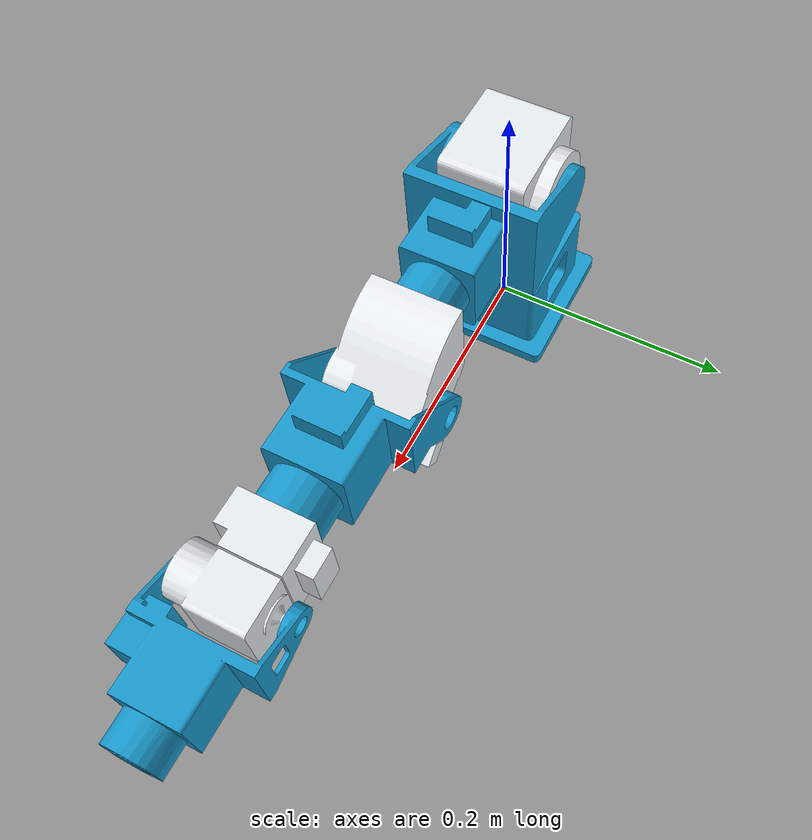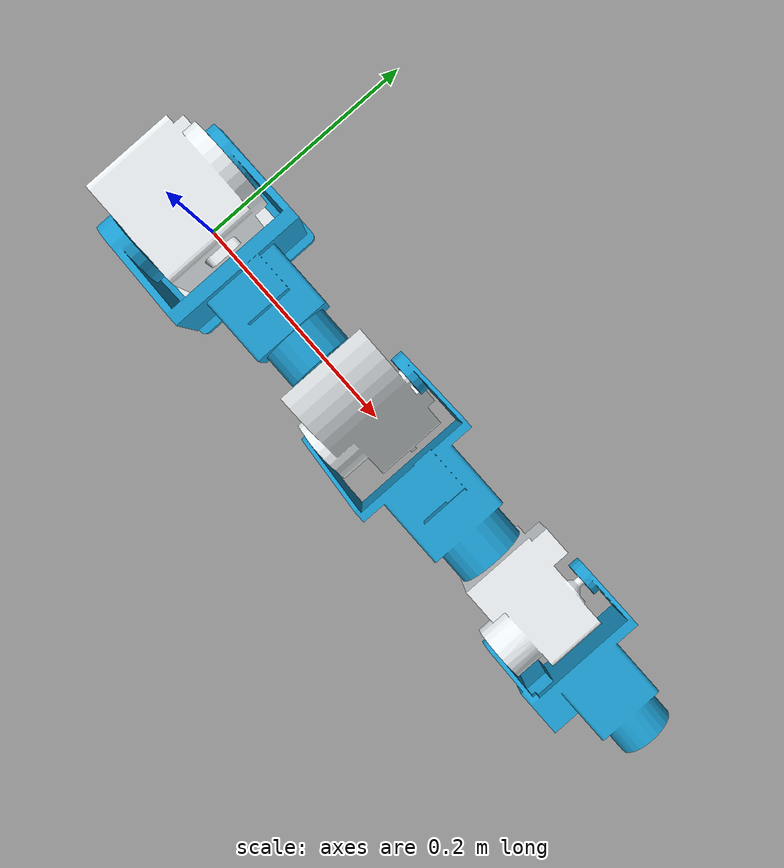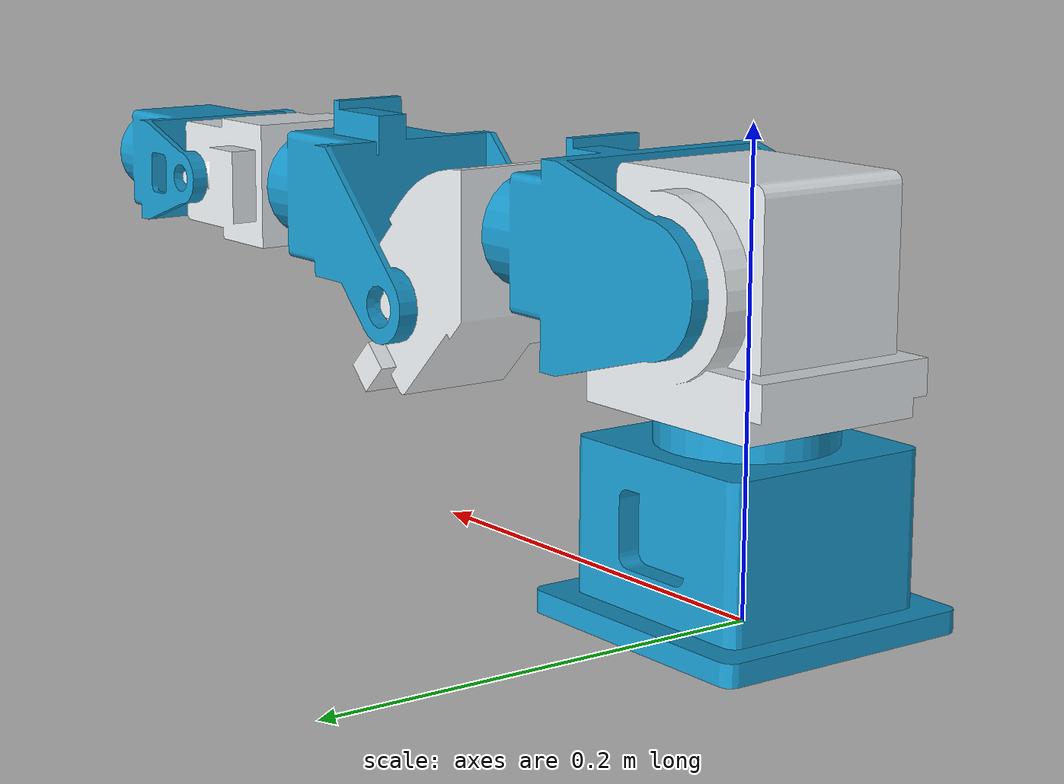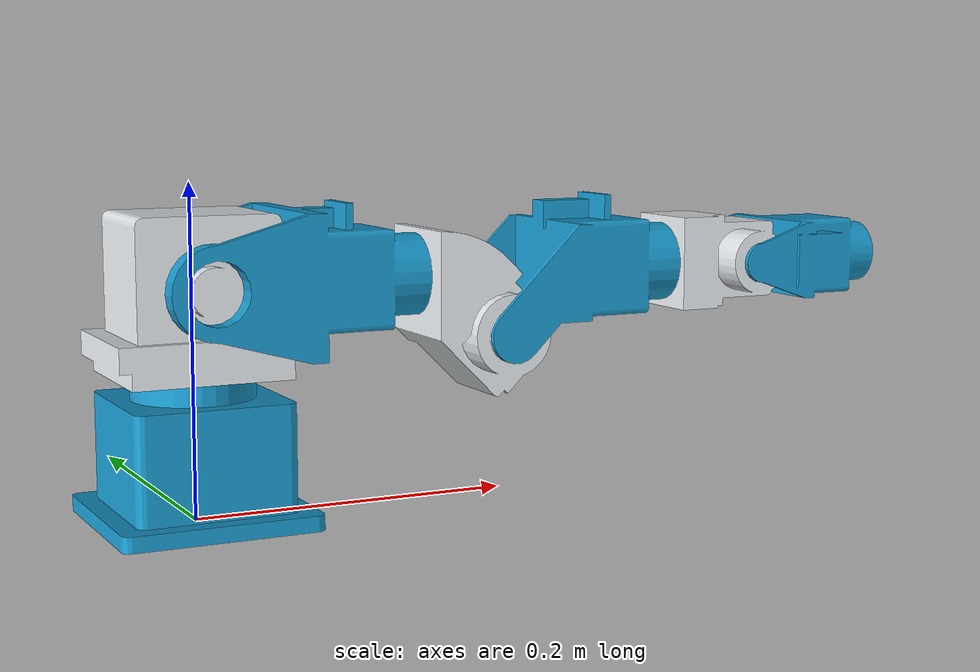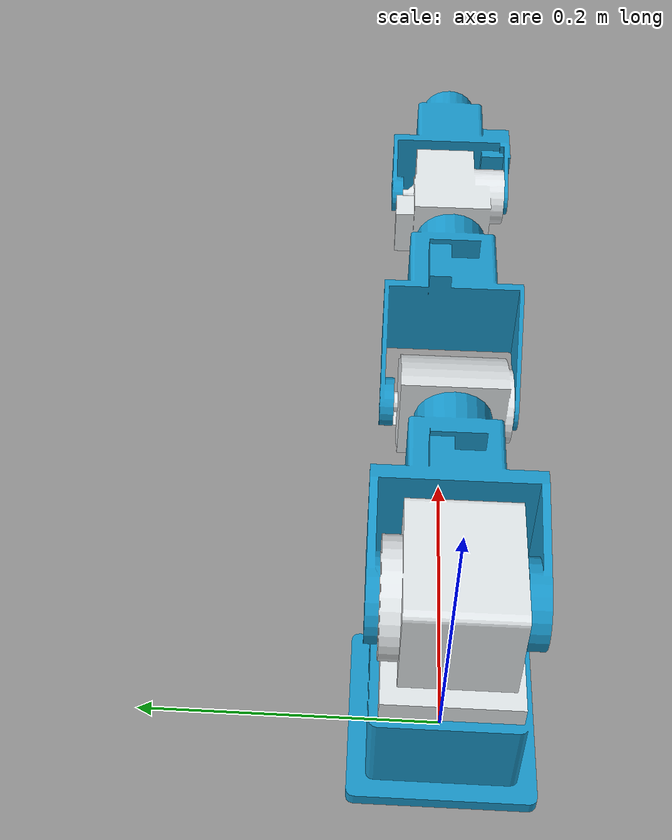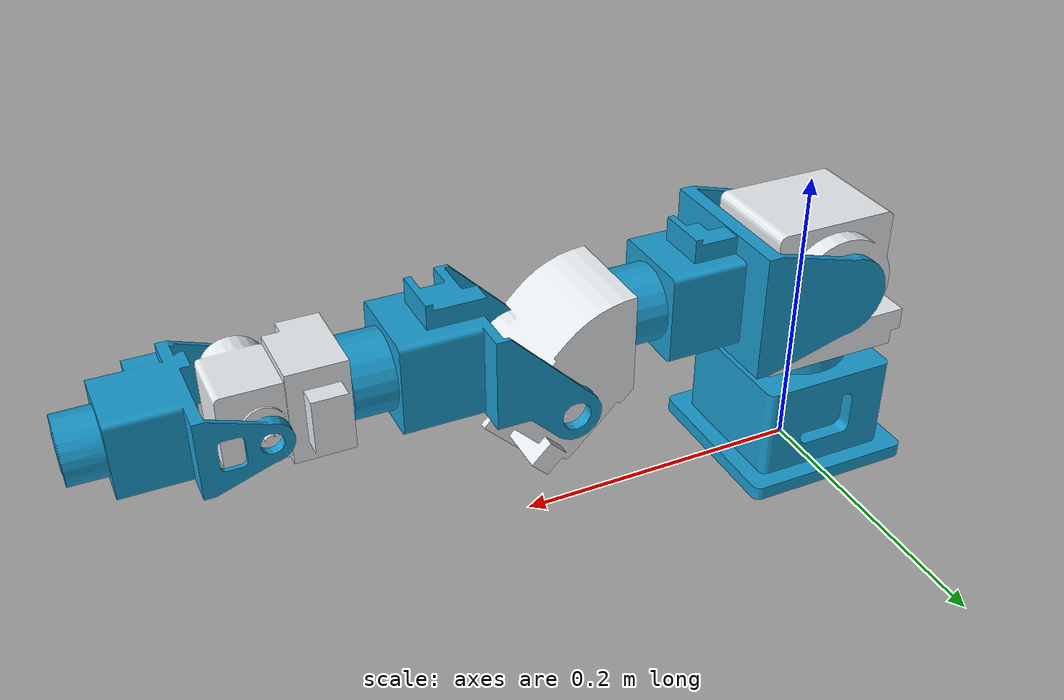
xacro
<?xml version="1.0"?>
<robot
  name="blue_arm" xmlns:xacro="http://www.ros.org/wiki/xacro">

  <link name="world"/>
  <joint name="fixed " type="fixed">
    <origin
      xyz="0 0 0"
      rpy="0 0 0" />
    <parent link="world"/>
    <child link="base_link"/>
  </joint>

  <link
    name="base_link">
    <inertial>
      <origin
        xyz="-1.2721E-09 -2.221E-09 0.029334"
        rpy="0 0 0" />
      <mass
        value="0.80823" />
      <inertia
        ixx="0.1"
        ixy="0"
        ixz="0"
        iyy="0.1"
        iyz="0"
        izz="0.1" />
    </inertial>
    <visual>
      <origin
        xyz="0 0 0"
        rpy="0 0 0" />
      <geometry>
        <mesh
          filename="package://blue_arm_description/meshes/visual/base_link.STL" />
      </geometry>
      <material
        name="">
        <color
          rgba="0.1 0.6 0.8 1" />
      </material>
    </visual>
    <collision>
      <origin
        xyz="0 0 0"
        rpy="0 0 0" />
      <geometry>
        <mesh
          filename="package://blue_arm_description/meshes/collision/base_link.STL" />
      </geometry>
    </collision>
  </link>
  <link
    name="link_1">
    <inertial>
      <origin
        xyz="0.0013724819847024 0.00105856120896306 -0.0137822751691176"
        rpy="0 0 0" />
      <mass
        value="0.842297822851205" />
      <inertia
        ixx="0.1"
        ixy="0"
        ixz="0"
        iyy="0.1"
        iyz="0"
        izz="0.1" />
    </inertial>
    <visual>
      <origin
        xyz="0 0 0"
        rpy="0 0 0" />
      <geometry>
        <mesh
          filename="package://blue_arm_description/meshes/visual/link_1.STL" />
      </geometry>
      <material
        name="">
        <color
          rgba="0.898039215686275 0.917647058823529 0.929411764705882 1" />
      </material>
    </visual>
    <collision>
      <origin
        xyz="0 0 0"
        rpy="0 0 0" />
      <geometry>
        <mesh
          filename="package://blue_arm_description/meshes/collision/link_1.STL" />
      </geometry>
    </collision>
  </link>
  <joint
    name="joint_1"
    type="revolute">
    <origin
      xyz="0 0 0.14"
      rpy="0 0 0" />
    <parent
      link="base_link" />
    <child
      link="link_1" />
    <axis
      xyz="0 0 1" />
    <limit
      lower="-3.1415926"
      upper="3.1415926"
      effort="1200"
      velocity="3.29" />
  </joint>
  <link
    name="link_2">
    <inertial>
      <origin
        xyz="0.0769223200130146 8.08732473817575E-05 -0.00042635625580266"
        rpy="0 0 0" />
      <mass
        value="0.745981126447571" />
      <inertia
        ixx="0.1"
        ixy="0"
        ixz="0"
        iyy="0.1"
        iyz="0"
        izz="0.1" />
    </inertial>
    <visual>
      <origin
        xyz="0 0 0"
        rpy="0 0 0" />
      <geometry>
        <mesh
          filename="package://blue_arm_description/meshes/visual/link_2.STL" />
      </geometry>
      <material
        name="">
        <color
          rgba="0.1 0.6 0.8 1" />
      </material>
    </visual>
    <collision>
      <origin
        xyz="0 0 0"
        rpy="0 0 0" />
      <geometry>
        <mesh
          filename="package://blue_arm_description/meshes/collision/link_2.STL" />
      </geometry>
    </collision>
  </link>
  <joint
    name="joint_2"
    type="revolute">
    <origin
      xyz="0 0 0"
      rpy="0 0 0" />
    <parent
      link="link_1" />
    <child
      link="link_2" />
    <axis
      xyz="0 1 0" />
    <limit
      lower="-3.1415926"
      upper="0"
      effort="1200"
      velocity="3.29" />
  </joint>
  <link
    name="link_3">
    <inertial>
      <origin
        xyz="-0.0114331813251084 -0.000457582008541844 -0.0216566472730735"
        rpy="0 0 0" />
      <mass
        value="0.804459827803754" />
      <inertia
        ixx="0.1"
        ixy="0"
        ixz="0"
        iyy="0.1"
        iyz="0"
        izz="0.1" />
    </inertial>
    <visual>
      <origin
        xyz="0 0 0"
        rpy="0 0 0" />
      <geometry>
        <mesh
          filename="package://blue_arm_description/meshes/visual/link_3.STL" />
      </geometry>
      <material
        name="">
        <color
          rgba="0.898039215686275 0.917647058823529 0.929411764705882 1" />
      </material>
    </visual>
    <collision>
      <origin
        xyz="0 0 0"
        rpy="0 0 0" />
      <geometry>
        <mesh
          filename="package://blue_arm_description/meshes/collision/link_3.STL" />
      </geometry>
    </collision>
  </link>
  <joint
    name="joint_3"
    type="revolute">
    <origin
      xyz="0.1415 0 0"
      rpy="0 0 0" />
    <parent
      link="link_2" />
    <child
      link="link_3" />
    <axis
      xyz="1 0 0" />
    <limit
      lower="-3.1415926"
      upper="3.1415926"
      effort="1000"
      velocity="2.39" />
  </joint>
  <link
    name="link_4">
    <inertial>
      <origin
        xyz="0.0769734778463645 0.000934629244450365 0.0356212264841299"
        rpy="0 0 0" />
      <mass
        value="0.566230423072006" />
      <inertia
        ixx="0.1"
        ixy="0"
        ixz="0"
        iyy="0.1"
        iyz="0"
        izz="0.1" />
    </inertial>
    <visual>
      <origin
        xyz="0 0 0"
        rpy="0 0 0" />
      <geometry>
        <mesh
          filename="package://blue_arm_description/meshes/visual/link_4.STL" />
      </geometry>
      <material
        name="">
        <color
          rgba="0.1 0.6 0.8 1" />
      </material>
    </visual>
    <collision>
      <origin
        xyz="0 0 0"
        rpy="0 0 0" />
      <geometry>
        <mesh
          filename="package://blue_arm_description/meshes/collision/link_4.STL" />
      </geometry>
    </collision>
  </link>
  <joint
    name="joint_4"
    type="revolute">
    <origin
      xyz="0.0485 0 -0.0365"
      rpy="0 0 0" />
    <parent
      link="link_3" />
    <child
      link="link_4" />
    <axis
      xyz="0 -1 0" />
    <limit
      lower="-3.1415926"
      upper="0"
      effort="1000"
      velocity="2.39" />
  </joint>
  <link
    name="link_5">
    <inertial>
      <origin
        xyz="-0.0148074583751761 0.00213542128687548 2.18169794868883E-07"
        rpy="0 0 0" />
      <mass
        value="0.462017126683371" />
      <inertia
        ixx="0.1"
        ixy="0"
        ixz="0"
        iyy="0.1"
        iyz="0"
        izz="0.1" />
    </inertial>
    <visual>
      <origin
        xyz="0 0 0"
        rpy="0 0 0" />
      <geometry>
        <mesh
          filename="package://blue_arm_description/meshes/visual/link_5.STL" />
      </geometry>
      <material
        name="">
        <color
          rgba="0.898039215686275 0.917647058823529 0.929411764705882 1" />
      </material>
    </visual>
    <collision>
      <origin
        xyz="0 0 0"
        rpy="0 0 0" />
      <geometry>
        <mesh
          filename="package://blue_arm_description/meshes/collision/link_5.STL" />
      </geometry>
    </collision>
  </link>
  <joint
    name="joint_5"
    type="revolute">
    <origin
      xyz="0.183 0 0.0365"
      rpy="0 0 0" />
    <parent
      link="link_4" />
    <child
      link="link_5" />
    <axis
      xyz="1 0 0" />
    <limit
      lower="-3.1415926"
      upper="3.1415926"
      effort="1000"
      velocity="2.39" />
  </joint>
  <link
    name="link_6">
    <inertial>
      <origin
        xyz="0.057311 -0.0040732 2.7725E-07"
        rpy="0 0 0" />
      <mass
        value="0.41677" />
      <inertia
        ixx="0.1"
        ixy="0"
        ixz="0"
        iyy="0.1"
        iyz="0"
        izz="0.1" />
    </inertial>
    <visual>
      <origin
        xyz="0 0 0"
        rpy="0 0 0" />
      <geometry>
        <mesh
          filename="package://blue_arm_description/meshes/visual/link_6.STL" />
      </geometry>
      <material
        name="">
        <color
          rgba="0.1 0.6 0.8 1" />
      </material>
    </visual>
    <collision>
      <origin
        xyz="0 0 0"
        rpy="0 0 0" />
      <geometry>
        <mesh
          filename="package://blue_arm_description/meshes/collision/link_6.STL" />
      </geometry>
    </collision>
  </link>
  <joint
    name="joint_6"
    type="revolute">
    <origin
      xyz="0 0 0"
      rpy="0 0 0" />
    <parent
      link="link_5" />
    <child
      link="link_6" />
    <axis
      xyz="0 -1 0" />
    <limit
      lower="-1.7"
      upper="1.7"
      effort="1000"
      velocity="2.77" />
  </joint>
  <link
    name="link_7">
    <inertial>
      <origin
        xyz="0 0 0"
        rpy="0 0 0" />
      <mass
        value="0.1" />
      <inertia
        ixx="0.1"
        ixy="0"
        ixz="0"
        iyy="0.1"
        iyz="0"
        izz="0.1" />
    </inertial>
    <collision>
      <geometry>
        <box size="0.01 0.01 0.01"/>
      </geometry>
      <origin rpy="0 0 0" xyz="0 0 0"/>
    </collision>
  </link>
  <joint
    name="joint_7"
    type="revolute">
    <origin
      xyz="0.107 0 0"
      rpy="0 0 0" />
    <parent
      link="link_6" />
    <child
      link="link_7" />
    <axis
      xyz="1 0 0" />
    <limit
      lower="-3.1415926"
      upper="3.1415926"
      effort="1000"
      velocity="2.77" />
  </joint>
</robot>
